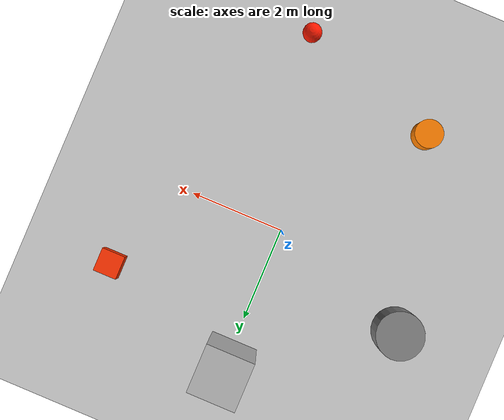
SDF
<?xml version="1.0" ?>
<sdf version="1.6">
  <world name="fire_world">

    <!-- A global light source -->
    <include>
      <uri>model://sun</uri>
    </include>

    <!-- A ground plane -->
    <include>
      <uri>model://ground_plane</uri>
    </include>

    <!-- Fire Source 1 - Red box representing fire -->
    <model name="fire_source_1">
      <pose>3 2 0.1 0 0 0</pose>
      <static>true</static>
      <link name="link">
        <collision name="collision">
          <geometry>
            <box>
              <size>0.5 0.5 0.2</size>
            </box>
          </geometry>
        </collision>
        <visual name="visual">
          <geometry>
            <box>
              <size>0.5 0.5 0.2</size>
            </box>
          </geometry>
          <material>
            <ambient>1 0.2 0 1</ambient>
            <diffuse>1 0.2 0 1</diffuse>
            <specular>1 0.2 0 1</specular>
            <emissive>0.8 0.1 0 1</emissive>
          </material>
        </visual>
      </link>
    </model>

    <!-- Fire Source 2 - Orange cylinder representing fire -->
    <model name="fire_source_2">
      <pose>-2 -3 0.15 0 0 0</pose>
      <static>true</static>
      <link name="link">
        <collision name="collision">
          <geometry>
            <cylinder>
              <radius>0.3</radius>
              <length>0.3</length>
            </cylinder>
          </geometry>
        </collision>
        <visual name="visual">
          <geometry>
            <cylinder>
              <radius>0.3</radius>
              <length>0.3</length>
            </cylinder>
          </geometry>
          <material>
            <ambient>1 0.5 0 1</ambient>
            <diffuse>1 0.5 0 1</diffuse>
            <specular>1 0.5 0 1</specular>
            <emissive>0.9 0.4 0 1</emissive>
          </material>
        </visual>
      </link>
    </model>

    <!-- Fire Source 3 - Red-orange sphere representing fire -->
    <model name="fire_source_3">
      <pose>1 -4 0.2 0 0 0</pose>
      <static>true</static>
      <link name="link">
        <collision name="collision">
          <geometry>
            <sphere>
              <radius>0.2</radius>
            </sphere>
          </geometry>
        </collision>
        <visual name="visual">
          <geometry>
            <sphere>
              <radius>0.2</radius>
            </sphere>
          </geometry>
          <material>
            <ambient>1 0.1 0 1</ambient>
            <diffuse>1 0.1 0 1</diffuse>
            <specular>1 0.1 0 1</specular>
            <emissive>0.9 0.05 0 1</emissive>
          </material>
        </visual>
      </link>
    </model>

    <!-- Some obstacles -->
    <model name="obstacle_1">
      <pose>0 3 0.5 0 0 0</pose>
      <static>true</static>
      <link name="link">
        <collision name="collision">
          <geometry>
            <box>
              <size>1 1 1</size>
            </box>
          </geometry>
        </collision>
        <visual name="visual">
          <geometry>
            <box>
              <size>1 1 1</size>
            </box>
          </geometry>
          <material>
            <ambient>0.7 0.7 0.7 1</ambient>
            <diffuse>0.7 0.7 0.7 1</diffuse>
          </material>
        </visual>
      </link>
    </model>

    <model name="obstacle_2">
      <pose>-3 1 0.25 0 0 0</pose>
      <static>true</static>
      <link name="link">
        <collision name="collision">
          <geometry>
            <cylinder>
              <radius>0.5</radius>
              <length>0.5</length>
            </cylinder>
          </geometry>
        </collision>
        <visual name="visual">
          <geometry>
            <cylinder>
              <radius>0.5</radius>
              <length>0.5</length>
            </cylinder>
          </geometry>
          <material>
            <ambient>0.5 0.5 0.5 1</ambient>
            <diffuse>0.5 0.5 0.5 1</diffuse>
          </material>
        </visual>
      </link>
    </model>

    <!-- Physics settings -->
    <physics name='default_physics' default='0' type='ode'>
      <gravity>0 0 -9.8066</gravity>
      <ode>
        <solver>
          <type>quick</type>
          <iters>10</iters>
          <sor>1.3</sor>
          <use_dynamic_moi_rescaling>0</use_dynamic_moi_rescaling>
        </solver>
        <constraints>
          <cfm>0</cfm>
          <erp>0.2</erp>
          <contact_max_correcting_vel>100</contact_max_correcting_vel>
          <contact_surface_layer>0.001</contact_surface_layer>
        </constraints>
      </ode>
      <max_step_size>0.004</max_step_size>
      <real_time_factor>1</real_time_factor>
      <real_time_update_rate>250</real_time_update_rate>
      <magnetic_field>6.0e-6 2.3e-5 -4.2e-5</magnetic_field>
    </physics>

  </world>
</sdf>
